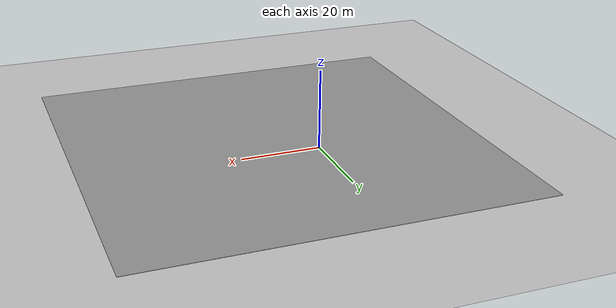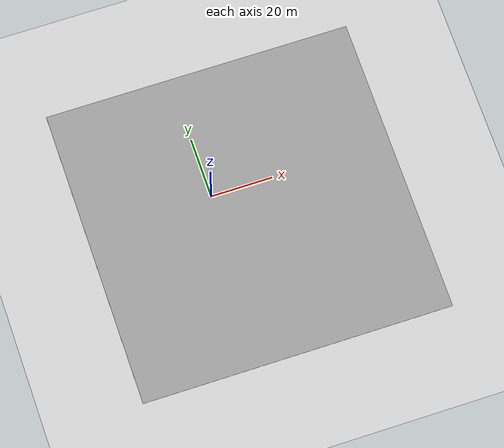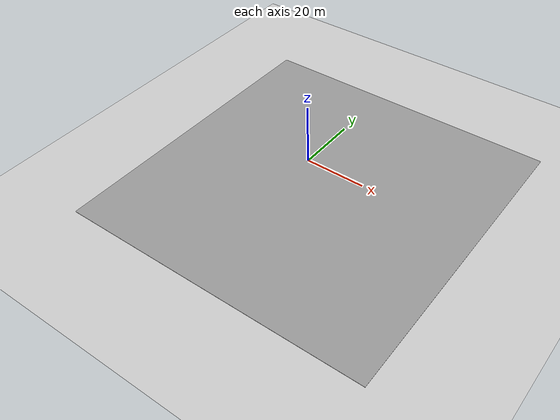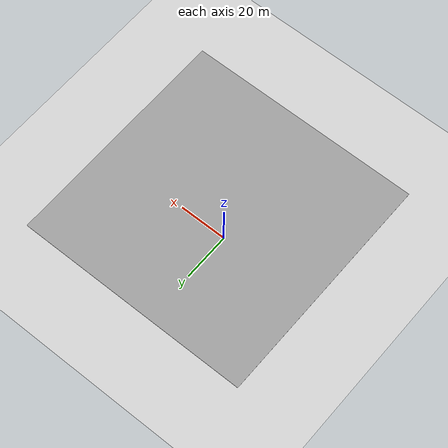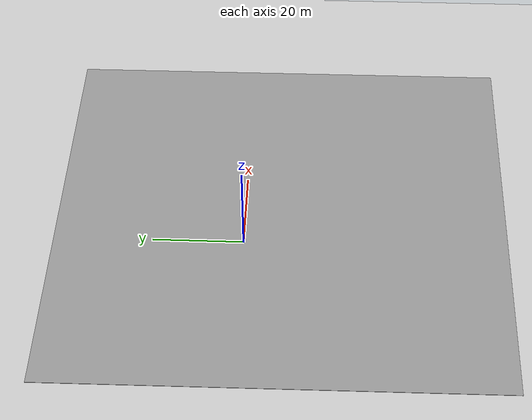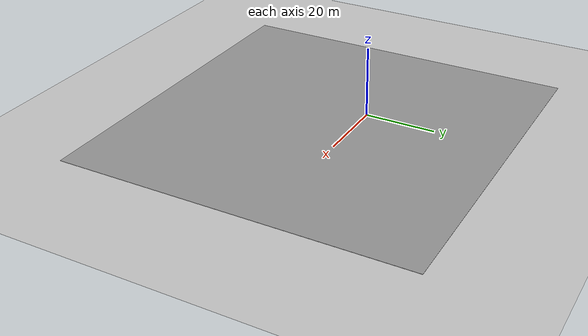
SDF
<sdf version="1.4">
 <world name="default">
  <light name="sun" type="directional">
   <cast_shadows>0</cast_shadows>
   <pose>-10 10 3 0 0 0</pose>
   <diffuse>1 1 1 1</diffuse>
   <specular>0.2 0.2 0.2 1</specular>
   <attenuation>
    <range>1</range>
    <constant>0.9</constant>
    <linear>0.01</linear>
    <quadratic>0.001</quadratic>
   </attenuation>
   <direction>-0.5 0.1 -0.9</direction>
  </light>
  <model name="ground_plane">
   <static>1</static>
   <link name="link">
    <collision name="collision">
     <geometry><plane><normal>0 0 1</normal><size>100 100</size></plane></geometry>
     <surface><friction><ode><mu>100</mu><mu2>50</mu2></ode></friction></surface>
    </collision>
    <visual name="visual">
     <cast_shadows>0</cast_shadows>
     <geometry><plane><normal>0 0 1</normal><size>100 100</size></plane></geometry>
     <material>
      <script><uri>file://media/materials/scripts/gazebo.material</uri><name>Gazebo/Grey</name></script>
     </material>
    </visual>
    <velocity_decay><linear>0</linear><angular>0</angular></velocity_decay>
   </link>
  </model>
  <physics type="ode">
   <max_step_size>0.001</max_step_size>
   <real_time_factor>1</real_time_factor>
   <real_time_update_rate>1000</real_time_update_rate>
   <gravity>0 0 -9.8</gravity>
  </physics>
  <scene><ambient>0.4 0.4 0.4 1</ambient><background>0.7 0.7 0.7 1</background><shadows>1</shadows></scene>
  <spherical_coordinates>
   <surface_model>EARTH_WGS84</surface_model>
   <latitude_deg>0</latitude_deg>
   <longitude_deg>0</longitude_deg>
   <elevation>0</elevation>
   <heading_deg>0</heading_deg>
  </spherical_coordinates>
  <model name="ground_plane_0">
   <static>1</static>
   <link name="link">
    <collision name="collision">
     <geometry><plane><normal>0 0 1</normal><size>100 100</size></plane></geometry>
     <surface><friction><ode><mu>100</mu><mu2>50</mu2></ode></friction></surface>
    </collision>
    <visual name="visual">
     <cast_shadows>0</cast_shadows>
     <geometry><plane><normal>0 0 1</normal><size>100 100</size></plane></geometry>
     <material>
      <script><uri>file://media/materials/scripts/gazebo.material</uri><name>Gazebo/Grey</name></script>
     </material>
    </visual>
    <velocity_decay><linear>0</linear><angular>0</angular></velocity_decay>
   </link>
   <pose>9 -8 0 0 -0 0</pose>
  </model>
 </world>
</sdf>
